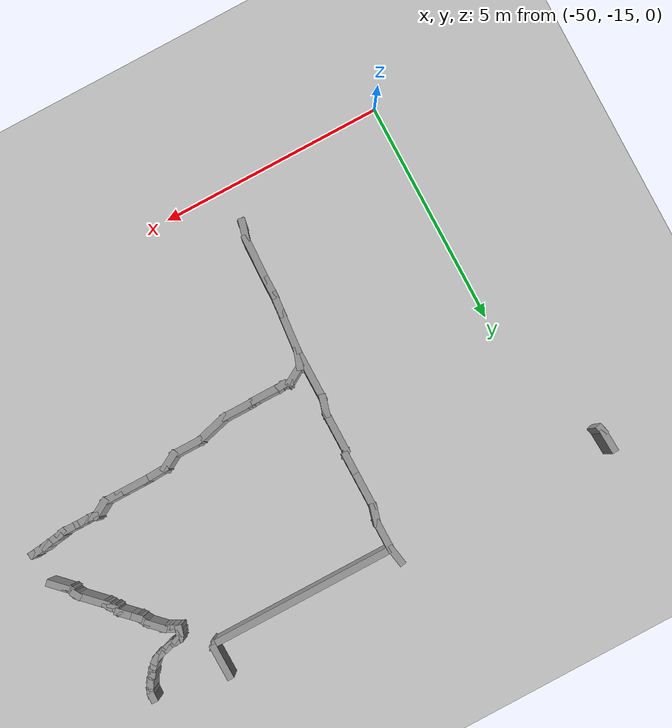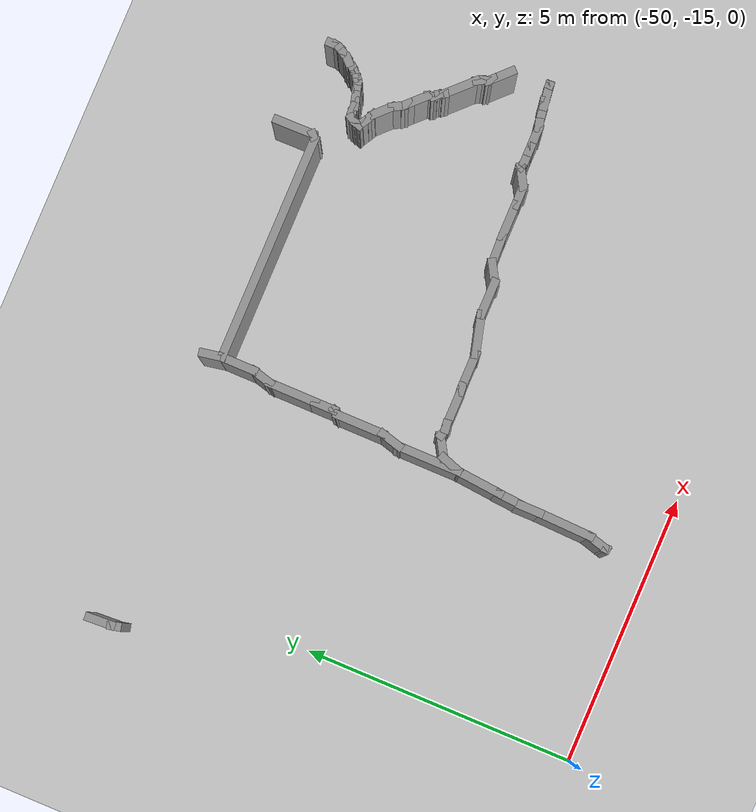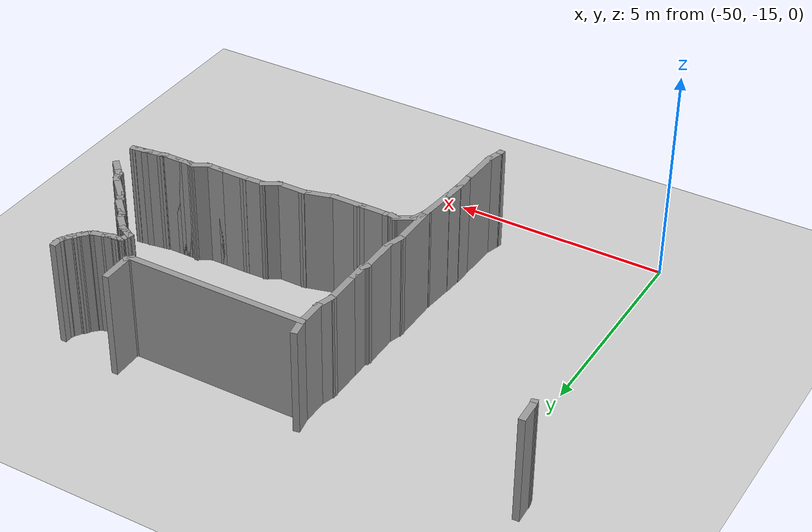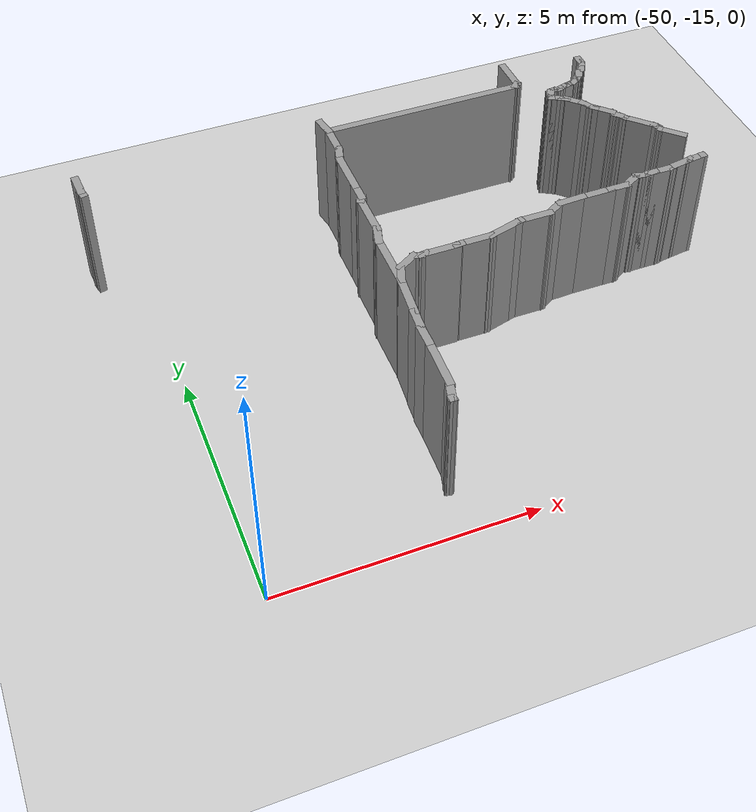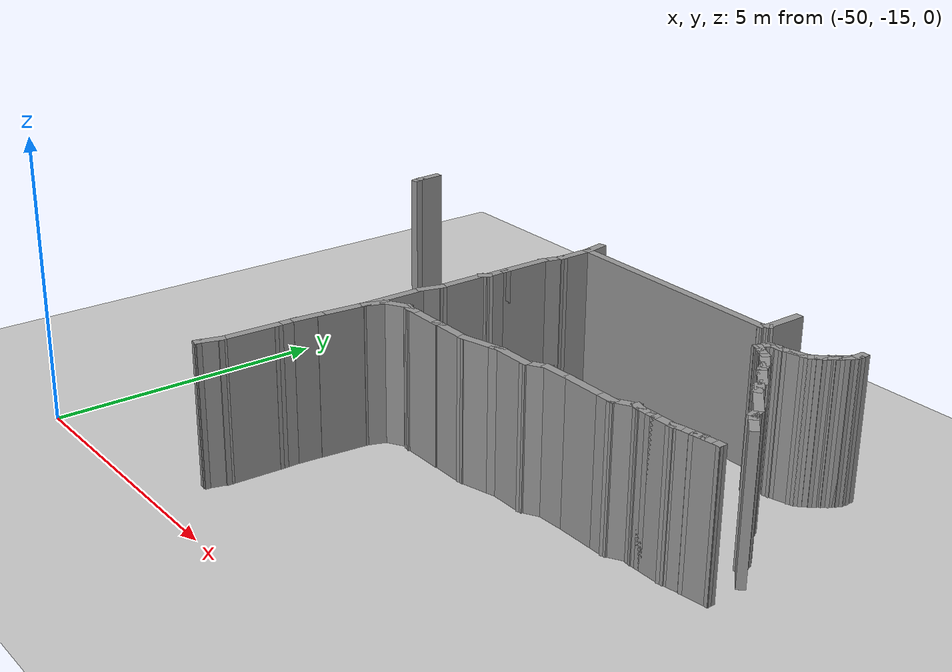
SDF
<sdf version="1.6">
 <world name="default">
  <model name="ground_plane">
   <static>1</static>
   <link name="link">
    <collision name="collision">
     <geometry><plane><normal>0 0 1</normal><size>100 100</size></plane></geometry>
     <surface><friction><ode><mu>100</mu><mu2>50</mu2></ode></friction></surface>
    </collision>
    <visual name="visual">
     <cast_shadows>0</cast_shadows>
     <geometry><plane><normal>0 0 1</normal><size>100 100</size></plane></geometry>
     <material>
      <script><uri>file://media/materials/scripts/gazebo.material</uri><name>Gazebo/Grey</name></script>
     </material>
    </visual>
   </link>
  </model>
  <model name="scene">
   <pose>1.8013 -1.70593 0 0 -0 0</pose>
   <link name="Wall_186">
    <collision name="Wall_186_Collision">
     <geometry><box><size>0.489872 0.15 2.5</size></box></geometry>
     <pose>0 0 1.25 0 -0 0</pose>
    </collision>
    <visual name="Wall_186_Visual">
     <pose>0 0 1.25 0 -0 0</pose>
     <geometry><box><size>0.489872 0.15 2.5</size></box></geometry>
     <material>
      <script><uri>file://media/materials/scripts/gazebo.material</uri><name>Gazebo/Grey</name></script>
      <ambient>1 1 1 1</ambient>
     </material>
    </visual>
    <pose>-43.1277 -8.61982 0 0 -0 3.14159</pose>
   </link>
   <link name="Wall_187">
    <collision name="Wall_187_Collision">
     <geometry><box><size>0.75 0.15 2.5</size></box></geometry>
     <pose>0 0 1.25 0 -0 0</pose>
    </collision>
    <visual name="Wall_187_Visual">
     <pose>0 0 1.25 0 -0 0</pose>
     <geometry><box><size>0.75 0.15 2.5</size></box></geometry>
     <material>
      <script><uri>file://media/materials/scripts/gazebo.material</uri><name>Gazebo/Grey</name></script>
      <ambient>1 1 1 1</ambient>
     </material>
    </visual>
    <pose>-43.5976 -8.61982 0 0 -0 3.14159</pose>
   </link>
   <link name="Wall_188">
    <collision name="Wall_188_Collision">
     <geometry><box><size>0.623185 0.15 2.5</size></box></geometry>
     <pose>0 0 1.25 0 -0 0</pose>
    </collision>
    <visual name="Wall_188_Visual">
     <pose>0 0 1.25 0 -0 0</pose>
     <geometry><box><size>0.623185 0.15 2.5</size></box></geometry>
     <material>
      <script><uri>file://media/materials/scripts/gazebo.material</uri><name>Gazebo/Grey</name></script>
      <ambient>1 1 1 1</ambient>
     </material>
    </visual>
    <pose>-44.134 -8.62987 0 0 0 -3.09912</pose>
   </link>
   <link name="Wall_189">
    <collision name="Wall_189_Collision">
     <geometry><box><size>0.5 0.15 2.5</size></box></geometry>
     <pose>0 0 1.25 0 -0 0</pose>
    </collision>
    <visual name="Wall_189_Visual">
     <pose>0 0 1.25 0 -0 0</pose>
     <geometry><box><size>0.5 0.15 2.5</size></box></geometry>
     <material>
      <script><uri>file://media/materials/scripts/gazebo.material</uri><name>Gazebo/Grey</name></script>
      <ambient>1 1 1 1</ambient>
     </material>
    </visual>
    <pose>-44.522 -8.72071 0 0 0 -2.61799</pose>
   </link>
   <link name="Wall_192">
    <collision name="Wall_192_Collision">
     <geometry><box><size>0.75 0.15 2.5</size></box></geometry>
     <pose>0 0 1.25 0 -0 0</pose>
    </collision>
    <visual name="Wall_192_Visual">
     <pose>0 0 1.25 0 -0 0</pose>
     <geometry><box><size>0.75 0.15 2.5</size></box></geometry>
     <material>
      <script><uri>file://media/materials/scripts/gazebo.material</uri><name>Gazebo/Grey</name></script>
      <ambient>1 1 1 1</ambient>
     </material>
    </visual>
    <pose>-44.9735 -8.80821 0 0 -0 3.14159</pose>
   </link>
   <link name="Wall_193">
    <collision name="Wall_193_Collision">
     <geometry><box><size>0.25 0.15 2.5</size></box></geometry>
     <pose>0 0 1.25 0 -0 0</pose>
    </collision>
    <visual name="Wall_193_Visual">
     <pose>0 0 1.25 0 -0 0</pose>
     <geometry><box><size>0.25 0.15 2.5</size></box></geometry>
     <material>
      <script><uri>file://media/materials/scripts/gazebo.material</uri><name>Gazebo/Grey</name></script>
      <ambient>1 1 1 1</ambient>
     </material>
    </visual>
    <pose>-45.3218 -8.82115 0 0 0 -2.87979</pose>
   </link>
   <link name="Wall_194">
    <collision name="Wall_194_Collision">
     <geometry><box><size>0.75 0.15 2.5</size></box></geometry>
     <pose>0 0 1.25 0 -0 0</pose>
    </collision>
    <visual name="Wall_194_Visual">
     <pose>0 0 1.25 0 -0 0</pose>
     <geometry><box><size>0.75 0.15 2.5</size></box></geometry>
     <material>
      <script><uri>file://media/materials/scripts/gazebo.material</uri><name>Gazebo/Grey</name></script>
      <ambient>1 1 1 1</ambient>
     </material>
    </visual>
    <pose>-45.6599 -8.91174 0 0 0 -2.87979</pose>
   </link>
   <link name="Wall_195">
    <collision name="Wall_195_Collision">
     <geometry><box><size>0.75 0.15 2.5</size></box></geometry>
     <pose>0 0 1.25 0 -0 0</pose>
    </collision>
    <visual name="Wall_195_Visual">
     <pose>0 0 1.25 0 -0 0</pose>
     <geometry><box><size>0.75 0.15 2.5</size></box></geometry>
     <material>
      <script><uri>file://media/materials/scripts/gazebo.material</uri><name>Gazebo/Grey</name></script>
      <ambient>1 1 1 1</ambient>
     </material>
    </visual>
    <pose>-46.2497 -8.98939 0 0 -0 3.14159</pose>
   </link>
   <link name="Wall_196">
    <collision name="Wall_196_Collision">
     <geometry><box><size>0.247396 0.15 2.5</size></box></geometry>
     <pose>0 0 1.25 0 -0 0</pose>
    </collision>
    <visual name="Wall_196_Visual">
     <pose>0 0 1.25 0 -0 0</pose>
     <geometry><box><size>0.247396 0.15 2.5</size></box></geometry>
     <material>
      <script><uri>file://media/materials/scripts/gazebo.material</uri><name>Gazebo/Grey</name></script>
      <ambient>1 1 1 1</ambient>
     </material>
    </visual>
    <pose>-46.598 -8.99228 0 0 0 -3.08171</pose>
   </link>
   <link name="Wall_197">
    <collision name="Wall_197_Collision">
     <geometry><box><size>0.75 0.15 2.5</size></box></geometry>
     <pose>0 0 1.25 0 -0 0</pose>
    </collision>
    <visual name="Wall_197_Visual">
     <pose>0 0 1.25 0 -0 0</pose>
     <geometry><box><size>0.75 0.15 2.5</size></box></geometry>
     <material>
      <script><uri>file://media/materials/scripts/gazebo.material</uri><name>Gazebo/Grey</name></script>
      <ambient>1 1 1 1</ambient>
     </material>
    </visual>
    <pose>-46.9463 -9.00188 0 0 -0 3.14159</pose>
   </link>
   <link name="Wall_198">
    <collision name="Wall_198_Collision">
     <geometry><box><size>0.253569 0.15 2.5</size></box></geometry>
     <pose>0 0 1.25 0 -0 0</pose>
    </collision>
    <visual name="Wall_198_Visual">
     <pose>0 0 1.25 0 -0 0</pose>
     <geometry><box><size>0.253569 0.15 2.5</size></box></geometry>
     <material>
      <script><uri>file://media/materials/scripts/gazebo.material</uri><name>Gazebo/Grey</name></script>
      <ambient>1 1 1 1</ambient>
     </material>
    </visual>
    <pose>-47.2979 -9.00142 0 0 0 -3.02127</pose>
   </link>
   <link name="Wall_199">
    <collision name="Wall_199_Collision">
     <geometry><box><size>0.278084 0.15 2.5</size></box></geometry>
     <pose>0 0 1.25 0 -0 0</pose>
    </collision>
    <visual name="Wall_199_Visual">
     <pose>0 0 1.25 0 -0 0</pose>
     <geometry><box><size>0.278084 0.15 2.5</size></box></geometry>
     <material>
      <script><uri>file://media/materials/scripts/gazebo.material</uri><name>Gazebo/Grey</name></script>
      <ambient>1 1 1 1</ambient>
     </material>
    </visual>
    <pose>-47.4112 -8.99717 0 0 -0 2.86976</pose>
   </link>
   <link name="Wall_200">
    <collision name="Wall_200_Collision">
     <geometry><box><size>0.542446 0.15 2.5</size></box></geometry>
     <pose>0 0 1.25 0 -0 0</pose>
    </collision>
    <visual name="Wall_200_Visual">
     <pose>0 0 1.25 0 -0 0</pose>
     <geometry><box><size>0.542446 0.15 2.5</size></box></geometry>
     <material>
      <script><uri>file://media/materials/scripts/gazebo.material</uri><name>Gazebo/Grey</name></script>
      <ambient>1 1 1 1</ambient>
     </material>
    </visual>
    <pose>-47.6412 -9.07417 0 0 0 -2.60154</pose>
   </link>
   <link name="Wall_201">
    <collision name="Wall_201_Collision">
     <geometry><box><size>0.486694 0.15 2.5</size></box></geometry>
     <pose>0 0 1.25 0 -0 0</pose>
    </collision>
    <visual name="Wall_201_Visual">
     <pose>0 0 1.25 0 -0 0</pose>
     <geometry><box><size>0.486694 0.15 2.5</size></box></geometry>
     <material>
      <script><uri>file://media/materials/scripts/gazebo.material</uri><name>Gazebo/Grey</name></script>
      <ambient>1 1 1 1</ambient>
     </material>
    </visual>
    <pose>-47.8649 -9.32736 0 0 0 -1.90574</pose>
   </link>
   <link name="Wall_203">
    <collision name="Wall_203_Collision">
     <geometry><box><size>0.963162 0.15 2.5</size></box></geometry>
     <pose>0 0 1.25 0 -0 0</pose>
    </collision>
    <visual name="Wall_203_Visual">
     <pose>0 0 1.25 0 -0 0</pose>
     <geometry><box><size>0.963162 0.15 2.5</size></box></geometry>
     <material>
      <script><uri>file://media/materials/scripts/gazebo.material</uri><name>Gazebo/Grey</name></script>
      <ambient>1 1 1 1</ambient>
     </material>
    </visual>
    <pose>-47.9637 -9.89126 0 0 0 -1.66151</pose>
   </link>
   <link name="Wall_205">
    <collision name="Wall_205_Collision">
     <geometry><box><size>0.570071 0.15 2.5</size></box></geometry>
     <pose>0 0 1.25 0 -0 0</pose>
    </collision>
    <visual name="Wall_205_Visual">
     <pose>0 0 1.25 0 -0 0</pose>
     <geometry><box><size>0.570071 0.15 2.5</size></box></geometry>
     <material>
      <script><uri>file://media/materials/scripts/gazebo.material</uri><name>Gazebo/Grey</name></script>
      <ambient>1 1 1 1</ambient>
     </material>
    </visual>
    <pose>-48.0224 -10.5054 0 0 0 -1.64312</pose>
   </link>
   <link name="Wall_206">
    <collision name="Wall_206_Collision">
     <geometry><box><size>0.5 0.15 2.5</size></box></geometry>
     <pose>0 0 1.25 0 -0 0</pose>
    </collision>
    <visual name="Wall_206_Visual">
     <pose>0 0 1.25 0 -0 0</pose>
     <geometry><box><size>0.5 0.15 2.5</size></box></geometry>
     <material>
      <script><uri>file://media/materials/scripts/gazebo.material</uri><name>Gazebo/Grey</name></script>
      <ambient>1 1 1 1</ambient>
     </material>
    </visual>
    <pose>-48.0443 -10.8896 0 0 0 -1.5708</pose>
   </link>
   <link name="Wall_207">
    <collision name="Wall_207_Collision">
     <geometry><box><size>1.1091 0.15 2.5</size></box></geometry>
     <pose>0 0 1.25 0 -0 0</pose>
    </collision>
    <visual name="Wall_207_Visual">
     <pose>0 0 1.25 0 -0 0</pose>
     <geometry><box><size>1.1091 0.15 2.5</size></box></geometry>
     <material>
      <script><uri>file://media/materials/scripts/gazebo.material</uri><name>Gazebo/Grey</name></script>
      <ambient>1 1 1 1</ambient>
     </material>
    </visual>
    <pose>-48.0594 -11.5439 0 0 0 -1.60241</pose>
   </link>
   <link name="Wall_209">
    <collision name="Wall_209_Collision">
     <geometry><box><size>0.5 0.15 2.5</size></box></geometry>
     <pose>0 0 1.25 0 -0 0</pose>
    </collision>
    <visual name="Wall_209_Visual">
     <pose>0 0 1.25 0 -0 0</pose>
     <geometry><box><size>0.5 0.15 2.5</size></box></geometry>
     <material>
      <script><uri>file://media/materials/scripts/gazebo.material</uri><name>Gazebo/Grey</name></script>
      <ambient>1 1 1 1</ambient>
     </material>
    </visual>
    <pose>-48.1266 -12.1923 0 0 0 -1.8326</pose>
   </link>
   <link name="Wall_210">
    <collision name="Wall_210_Collision">
     <geometry><box><size>0.15 0.15 2.5</size></box></geometry>
     <pose>0 0 1.25 0 -0 0</pose>
    </collision>
    <visual name="Wall_210_Visual">
     <pose>0 0 1.25 0 -0 0</pose>
     <geometry><box><size>0.15 0.15 2.5</size></box></geometry>
     <material>
      <script><uri>file://media/materials/scripts/gazebo.material</uri><name>Gazebo/Grey</name></script>
      <ambient>1 1 1 1</ambient>
     </material>
    </visual>
    <pose>-48.1652 -12.3613 0 0 -0 0</pose>
   </link>
   <link name="Wall_212">
    <collision name="Wall_212_Collision">
     <geometry><box><size>1.25 0.15 2.5</size></box></geometry>
     <pose>0 0 1.25 0 -0 0</pose>
    </collision>
    <visual name="Wall_212_Visual">
     <pose>0 0 1.25 0 -0 0</pose>
     <geometry><box><size>1.25 0.15 2.5</size></box></geometry>
     <material>
      <script><uri>file://media/materials/scripts/gazebo.material</uri><name>Gazebo/Grey</name></script>
      <ambient>1 1 1 1</ambient>
     </material>
    </visual>
    <pose>-47.9269 -8.93635 0 0 -0 1.5708</pose>
   </link>
   <link name="Wall_213">
    <collision name="Wall_213_Collision">
     <geometry><box><size>0.5 0.15 2.5</size></box></geometry>
     <pose>0 0 1.25 0 -0 0</pose>
    </collision>
    <visual name="Wall_213_Visual">
     <pose>0 0 1.25 0 -0 0</pose>
     <geometry><box><size>0.5 0.15 2.5</size></box></geometry>
     <material>
      <script><uri>file://media/materials/scripts/gazebo.material</uri><name>Gazebo/Grey</name></script>
      <ambient>1 1 1 1</ambient>
     </material>
    </visual>
    <pose>-47.8816 -8.21731 0 0 -0 1.309</pose>
   </link>
   <link name="Wall_214">
    <collision name="Wall_214_Collision">
     <geometry><box><size>1 0.15 2.5</size></box></geometry>
     <pose>0 0 1.25 0 -0 0</pose>
    </collision>
    <visual name="Wall_214_Visual">
     <pose>0 0 1.25 0 -0 0</pose>
     <geometry><box><size>1 0.15 2.5</size></box></geometry>
     <material>
      <script><uri>file://media/materials/scripts/gazebo.material</uri><name>Gazebo/Grey</name></script>
      <ambient>1 1 1 1</ambient>
     </material>
    </visual>
    <pose>-47.8363 -7.62328 0 0 -0 1.5708</pose>
   </link>
   <link name="Wall_215">
    <collision name="Wall_215_Collision">
     <geometry><box><size>0.25 0.15 2.5</size></box></geometry>
     <pose>0 0 1.25 0 -0 0</pose>
    </collision>
    <visual name="Wall_215_Visual">
     <pose>0 0 1.25 0 -0 0</pose>
     <geometry><box><size>0.25 0.15 2.5</size></box></geometry>
     <material>
      <script><uri>file://media/materials/scripts/gazebo.material</uri><name>Gazebo/Grey</name></script>
      <ambient>1 1 1 1</ambient>
     </material>
    </visual>
    <pose>-47.8113 -7.15497 0 0 -0 1.0472</pose>
   </link>
   <link name="Wall_216">
    <collision name="Wall_216_Collision">
     <geometry><box><size>0.5 0.15 2.5</size></box></geometry>
     <pose>0 0 1.25 0 -0 0</pose>
    </collision>
    <visual name="Wall_216_Visual">
     <pose>0 0 1.25 0 -0 0</pose>
     <geometry><box><size>0.5 0.15 2.5</size></box></geometry>
     <material>
      <script><uri>file://media/materials/scripts/gazebo.material</uri><name>Gazebo/Grey</name></script>
      <ambient>1 1 1 1</ambient>
     </material>
    </visual>
    <pose>-47.7863 -6.93667 0 0 -0 1.5708</pose>
   </link>
   <link name="Wall_218">
    <collision name="Wall_218_Collision">
     <geometry><box><size>1 0.15 2.5</size></box></geometry>
     <pose>0 0 1.25 0 -0 0</pose>
    </collision>
    <visual name="Wall_218_Visual">
     <pose>0 0 1.25 0 -0 0</pose>
     <geometry><box><size>1 0.15 2.5</size></box></geometry>
     <material>
      <script><uri>file://media/materials/scripts/gazebo.material</uri><name>Gazebo/Grey</name></script>
      <ambient>1 1 1 1</ambient>
     </material>
    </visual>
    <pose>-47.7863 -6.33667 0 0 -0 1.5708</pose>
   </link>
   <link name="Wall_219">
    <collision name="Wall_219_Collision">
     <geometry><box><size>0.5 0.15 2.5</size></box></geometry>
     <pose>0 0 1.25 0 -0 0</pose>
    </collision>
    <visual name="Wall_219_Visual">
     <pose>0 0 1.25 0 -0 0</pose>
     <geometry><box><size>0.5 0.15 2.5</size></box></geometry>
     <material>
      <script><uri>file://media/materials/scripts/gazebo.material</uri><name>Gazebo/Grey</name></script>
      <ambient>1 1 1 1</ambient>
     </material>
    </visual>
    <pose>-47.741 -5.74264 0 0 -0 1.309</pose>
   </link>
   <link name="Wall_220">
    <collision name="Wall_220_Collision">
     <geometry><box><size>0.75 0.15 2.5</size></box></geometry>
     <pose>0 0 1.25 0 -0 0</pose>
    </collision>
    <visual name="Wall_220_Visual">
     <pose>0 0 1.25 0 -0 0</pose>
     <geometry><box><size>0.75 0.15 2.5</size></box></geometry>
     <material>
      <script><uri>file://media/materials/scripts/gazebo.material</uri><name>Gazebo/Grey</name></script>
      <ambient>1 1 1 1</ambient>
     </material>
    </visual>
    <pose>-47.6957 -5.2736 0 0 -0 1.5708</pose>
   </link>
   <link name="Wall_222">
    <collision name="Wall_222_Collision">
     <geometry><box><size>0.485738 0.15 2.5</size></box></geometry>
     <pose>0 0 1.25 0 -0 0</pose>
    </collision>
    <visual name="Wall_222_Visual">
     <pose>0 0 1.25 0 -0 0</pose>
     <geometry><box><size>0.485738 0.15 2.5</size></box></geometry>
     <material>
      <script><uri>file://media/materials/scripts/gazebo.material</uri><name>Gazebo/Grey</name></script>
      <ambient>1 1 1 1</ambient>
     </material>
    </visual>
    <pose>-47.7256 -4.80841 0 0 -0 1.74981</pose>
   </link>
   <link name="Wall_232">
    <collision name="Wall_232_Collision">
     <geometry><box><size>4.25 0.15 2.5</size></box></geometry>
     <pose>0 0 1.25 0 -0 0</pose>
    </collision>
    <visual name="Wall_232_Visual">
     <pose>0 0 1.25 0 -0 0</pose>
     <geometry><box><size>4.25 0.15 2.5</size></box></geometry>
     <material>
      <script><uri>file://media/materials/scripts/gazebo.material</uri><name>Gazebo/Grey</name></script>
      <ambient>1 1 1 1</ambient>
     </material>
    </visual>
    <pose>-45.6457 -4.9736 0 0 -0 0</pose>
   </link>
   <link name="Wall_233">
    <collision name="Wall_233_Collision">
     <geometry><box><size>0.25 0.15 2.5</size></box></geometry>
     <pose>0 0 1.25 0 -0 0</pose>
    </collision>
    <visual name="Wall_233_Visual">
     <pose>0 0 1.25 0 -0 0</pose>
     <geometry><box><size>0.25 0.15 2.5</size></box></geometry>
     <material>
      <script><uri>file://media/materials/scripts/gazebo.material</uri><name>Gazebo/Grey</name></script>
      <ambient>1 1 1 1</ambient>
     </material>
    </visual>
    <pose>-43.5604 -4.93824 0 0 -0 0.785398</pose>
   </link>
   <link name="Wall_244">
    <collision name="Wall_244_Collision">
     <geometry><box><size>0.80796 0.15 2.5</size></box></geometry>
     <pose>0 0 1.25 0 -0 0</pose>
    </collision>
    <visual name="Wall_244_Visual">
     <pose>0 0 1.25 0 -0 0</pose>
     <geometry><box><size>0.80796 0.15 2.5</size></box></geometry>
     <material>
      <script><uri>file://media/materials/scripts/gazebo.material</uri><name>Gazebo/Grey</name></script>
      <ambient>1 1 1 1</ambient>
     </material>
    </visual>
    <pose>-43.5296 -4.57394 0 0 0 -1.55671</pose>
   </link>
   <link name="Wall_269">
    <collision name="Wall_269_Collision">
     <geometry><box><size>0.25 0.15 2.5</size></box></geometry>
     <pose>0 0 1.25 0 -0 0</pose>
    </collision>
    <visual name="Wall_269_Visual">
     <pose>0 0 1.25 0 -0 0</pose>
     <geometry><box><size>0.25 0.15 2.5</size></box></geometry>
     <material>
      <script><uri>file://media/materials/scripts/gazebo.material</uri><name>Gazebo/Grey</name></script>
      <ambient>1 1 1 1</ambient>
     </material>
    </visual>
    <pose>-41.9402 -4.61241 0 0 0 -1.5708</pose>
   </link>
   <link name="Wall_270">
    <collision name="Wall_270_Collision">
     <geometry><box><size>0.25 0.15 2.5</size></box></geometry>
     <pose>0 0 1.25 0 -0 0</pose>
    </collision>
    <visual name="Wall_270_Visual">
     <pose>0 0 1.25 0 -0 0</pose>
     <geometry><box><size>0.25 0.15 2.5</size></box></geometry>
     <material>
      <script><uri>file://media/materials/scripts/gazebo.material</uri><name>Gazebo/Grey</name></script>
      <ambient>1 1 1 1</ambient>
     </material>
    </visual>
    <pose>-41.9532 -4.71071 0 0 0 -1.8326</pose>
   </link>
   <link name="Wall_271">
    <collision name="Wall_271_Collision">
     <geometry><box><size>0.25 0.15 2.5</size></box></geometry>
     <pose>0 0 1.25 0 -0 0</pose>
    </collision>
    <visual name="Wall_271_Visual">
     <pose>0 0 1.25 0 -0 0</pose>
     <geometry><box><size>0.25 0.15 2.5</size></box></geometry>
     <material>
      <script><uri>file://media/materials/scripts/gazebo.material</uri><name>Gazebo/Grey</name></script>
      <ambient>1 1 1 1</ambient>
     </material>
    </visual>
    <pose>-41.9911 -4.80231 0 0 0 -2.0944</pose>
   </link>
   <link name="Wall_273">
    <collision name="Wall_273_Collision">
     <geometry><box><size>0.25 0.15 2.5</size></box></geometry>
     <pose>0 0 1.25 0 -0 0</pose>
    </collision>
    <visual name="Wall_273_Visual">
     <pose>0 0 1.25 0 -0 0</pose>
     <geometry><box><size>0.25 0.15 2.5</size></box></geometry>
     <material>
      <script><uri>file://media/materials/scripts/gazebo.material</uri><name>Gazebo/Grey</name></script>
      <ambient>1 1 1 1</ambient>
     </material>
    </visual>
    <pose>-41.9911 -4.80231 0 0 0 -2.0944</pose>
   </link>
   <link name="Wall_274">
    <collision name="Wall_274_Collision">
     <geometry><box><size>0.25 0.15 2.5</size></box></geometry>
     <pose>0 0 1.25 0 -0 0</pose>
    </collision>
    <visual name="Wall_274_Visual">
     <pose>0 0 1.25 0 -0 0</pose>
     <geometry><box><size>0.25 0.15 2.5</size></box></geometry>
     <material>
      <script><uri>file://media/materials/scripts/gazebo.material</uri><name>Gazebo/Grey</name></script>
      <ambient>1 1 1 1</ambient>
     </material>
    </visual>
    <pose>-42.0411 -4.88891 0 0 0 -2.0944</pose>
   </link>
   <link name="Wall_275">
    <collision name="Wall_275_Collision">
     <geometry><box><size>0.25 0.15 2.5</size></box></geometry>
     <pose>0 0 1.25 0 -0 0</pose>
    </collision>
    <visual name="Wall_275_Visual">
     <pose>0 0 1.25 0 -0 0</pose>
     <geometry><box><size>0.25 0.15 2.5</size></box></geometry>
     <material>
      <script><uri>file://media/materials/scripts/gazebo.material</uri><name>Gazebo/Grey</name></script>
      <ambient>1 1 1 1</ambient>
     </material>
    </visual>
    <pose>-42.1015 -4.96757 0 0 0 -2.35619</pose>
   </link>
   <link name="Wall_276">
    <collision name="Wall_276_Collision">
     <geometry><box><size>0.25 0.15 2.5</size></box></geometry>
     <pose>0 0 1.25 0 -0 0</pose>
    </collision>
    <visual name="Wall_276_Visual">
     <pose>0 0 1.25 0 -0 0</pose>
     <geometry><box><size>0.25 0.15 2.5</size></box></geometry>
     <material>
      <script><uri>file://media/materials/scripts/gazebo.material</uri><name>Gazebo/Grey</name></script>
      <ambient>1 1 1 1</ambient>
     </material>
    </visual>
    <pose>-42.1618 -5.04622 0 0 0 -2.0944</pose>
   </link>
   <link name="Wall_277">
    <collision name="Wall_277_Collision">
     <geometry><box><size>0.25 0.15 2.5</size></box></geometry>
     <pose>0 0 1.25 0 -0 0</pose>
    </collision>
    <visual name="Wall_277_Visual">
     <pose>0 0 1.25 0 -0 0</pose>
     <geometry><box><size>0.25 0.15 2.5</size></box></geometry>
     <material>
      <script><uri>file://media/materials/scripts/gazebo.material</uri><name>Gazebo/Grey</name></script>
      <ambient>1 1 1 1</ambient>
     </material>
    </visual>
    <pose>-42.2222 -5.12488 0 0 0 -2.35619</pose>
   </link>
   <link name="Wall_278">
    <collision name="Wall_278_Collision">
     <geometry><box><size>0.25 0.15 2.5</size></box></geometry>
     <pose>0 0 1.25 0 -0 0</pose>
    </collision>
    <visual name="Wall_278_Visual">
     <pose>0 0 1.25 0 -0 0</pose>
     <geometry><box><size>0.25 0.15 2.5</size></box></geometry>
     <material>
      <script><uri>file://media/materials/scripts/gazebo.material</uri><name>Gazebo/Grey</name></script>
      <ambient>1 1 1 1</ambient>
     </material>
    </visual>
    <pose>-42.2929 -5.19559 0 0 0 -2.35619</pose>
   </link>
   <link name="Wall_279">
    <collision name="Wall_279_Collision">
     <geometry><box><size>0.25 0.15 2.5</size></box></geometry>
     <pose>0 0 1.25 0 -0 0</pose>
    </collision>
    <visual name="Wall_279_Visual">
     <pose>0 0 1.25 0 -0 0</pose>
     <geometry><box><size>0.25 0.15 2.5</size></box></geometry>
     <material>
      <script><uri>file://media/materials/scripts/gazebo.material</uri><name>Gazebo/Grey</name></script>
      <ambient>1 1 1 1</ambient>
     </material>
    </visual>
    <pose>-42.3716 -5.25594 0 0 0 -2.61799</pose>
   </link>
   <link name="Wall_280">
    <collision name="Wall_280_Collision">
     <geometry><box><size>0.25 0.15 2.5</size></box></geometry>
     <pose>0 0 1.25 0 -0 0</pose>
    </collision>
    <visual name="Wall_280_Visual">
     <pose>0 0 1.25 0 -0 0</pose>
     <geometry><box><size>0.25 0.15 2.5</size></box></geometry>
     <material>
      <script><uri>file://media/materials/scripts/gazebo.material</uri><name>Gazebo/Grey</name></script>
      <ambient>1 1 1 1</ambient>
     </material>
    </visual>
    <pose>-42.4632 -5.29389 0 0 0 -2.87979</pose>
   </link>
   <link name="Wall_281">
    <collision name="Wall_281_Collision">
     <geometry><box><size>0.25 0.15 2.5</size></box></geometry>
     <pose>0 0 1.25 0 -0 0</pose>
    </collision>
    <visual name="Wall_281_Visual">
     <pose>0 0 1.25 0 -0 0</pose>
     <geometry><box><size>0.25 0.15 2.5</size></box></geometry>
     <material>
      <script><uri>file://media/materials/scripts/gazebo.material</uri><name>Gazebo/Grey</name></script>
      <ambient>1 1 1 1</ambient>
     </material>
    </visual>
    <pose>-42.5597 -5.31977 0 0 0 -2.87979</pose>
   </link>
   <link name="Wall_282">
    <collision name="Wall_282_Collision">
     <geometry><box><size>0.25 0.15 2.5</size></box></geometry>
     <pose>0 0 1.25 0 -0 0</pose>
    </collision>
    <visual name="Wall_282_Visual">
     <pose>0 0 1.25 0 -0 0</pose>
     <geometry><box><size>0.25 0.15 2.5</size></box></geometry>
     <material>
      <script><uri>file://media/materials/scripts/gazebo.material</uri><name>Gazebo/Grey</name></script>
      <ambient>1 1 1 1</ambient>
     </material>
    </visual>
    <pose>-42.6563 -5.34565 0 0 0 -2.87979</pose>
   </link>
   <link name="Wall_283">
    <collision name="Wall_283_Collision">
     <geometry><box><size>0.25 0.15 2.5</size></box></geometry>
     <pose>0 0 1.25 0 -0 0</pose>
    </collision>
    <visual name="Wall_283_Visual">
     <pose>0 0 1.25 0 -0 0</pose>
     <geometry><box><size>0.25 0.15 2.5</size></box></geometry>
     <material>
      <script><uri>file://media/materials/scripts/gazebo.material</uri><name>Gazebo/Grey</name></script>
      <ambient>1 1 1 1</ambient>
     </material>
    </visual>
    <pose>-42.7529 -5.37153 0 0 0 -2.87979</pose>
   </link>
   <link name="Wall_284">
    <collision name="Wall_284_Collision">
     <geometry><box><size>0.25 0.15 2.5</size></box></geometry>
     <pose>0 0 1.25 0 -0 0</pose>
    </collision>
    <visual name="Wall_284_Visual">
     <pose>0 0 1.25 0 -0 0</pose>
     <geometry><box><size>0.25 0.15 2.5</size></box></geometry>
     <material>
      <script><uri>file://media/materials/scripts/gazebo.material</uri><name>Gazebo/Grey</name></script>
      <ambient>1 1 1 1</ambient>
     </material>
    </visual>
    <pose>-42.8512 -5.38447 0 0 -0 3.14159</pose>
   </link>
   <link name="Wall_285">
    <collision name="Wall_285_Collision">
     <geometry><box><size>0.25 0.15 2.5</size></box></geometry>
     <pose>0 0 1.25 0 -0 0</pose>
    </collision>
    <visual name="Wall_285_Visual">
     <pose>0 0 1.25 0 -0 0</pose>
     <geometry><box><size>0.25 0.15 2.5</size></box></geometry>
     <material>
      <script><uri>file://media/materials/scripts/gazebo.material</uri><name>Gazebo/Grey</name></script>
      <ambient>1 1 1 1</ambient>
     </material>
    </visual>
    <pose>-42.9495 -5.39741 0 0 0 -2.87979</pose>
   </link>
   <link name="Wall_286">
    <collision name="Wall_286_Collision">
     <geometry><box><size>0.25 0.15 2.5</size></box></geometry>
     <pose>0 0 1.25 0 -0 0</pose>
    </collision>
    <visual name="Wall_286_Visual">
     <pose>0 0 1.25 0 -0 0</pose>
     <geometry><box><size>0.25 0.15 2.5</size></box></geometry>
     <material>
      <script><uri>file://media/materials/scripts/gazebo.material</uri><name>Gazebo/Grey</name></script>
      <ambient>1 1 1 1</ambient>
     </material>
    </visual>
    <pose>-43.0228 -5.45366 0 0 0 -2.0944</pose>
   </link>
   <link name="Wall_287">
    <collision name="Wall_287_Collision">
     <geometry><box><size>0.25 0.15 2.5</size></box></geometry>
     <pose>0 0 1.25 0 -0 0</pose>
    </collision>
    <visual name="Wall_287_Visual">
     <pose>0 0 1.25 0 -0 0</pose>
     <geometry><box><size>0.25 0.15 2.5</size></box></geometry>
     <material>
      <script><uri>file://media/materials/scripts/gazebo.material</uri><name>Gazebo/Grey</name></script>
      <ambient>1 1 1 1</ambient>
     </material>
    </visual>
    <pose>-43.0608 -5.54525 0 0 0 -1.8326</pose>
   </link>
   <link name="Wall_288">
    <collision name="Wall_288_Collision">
     <geometry><box><size>0.25 0.15 2.5</size></box></geometry>
     <pose>0 0 1.25 0 -0 0</pose>
    </collision>
    <visual name="Wall_288_Visual">
     <pose>0 0 1.25 0 -0 0</pose>
     <geometry><box><size>0.25 0.15 2.5</size></box></geometry>
     <material>
      <script><uri>file://media/materials/scripts/gazebo.material</uri><name>Gazebo/Grey</name></script>
      <ambient>1 1 1 1</ambient>
     </material>
    </visual>
    <pose>-43.0304 -5.61855 0 0 0 -0.523599</pose>
   </link>
   <link name="Wall_289">
    <collision name="Wall_289_Collision">
     <geometry><box><size>0.25 0.15 2.5</size></box></geometry>
     <pose>0 0 1.25 0 -0 0</pose>
    </collision>
    <visual name="Wall_289_Visual">
     <pose>0 0 1.25 0 -0 0</pose>
     <geometry><box><size>0.25 0.15 2.5</size></box></geometry>
     <material>
      <script><uri>file://media/materials/scripts/gazebo.material</uri><name>Gazebo/Grey</name></script>
      <ambient>1 1 1 1</ambient>
     </material>
    </visual>
    <pose>-42.9438 -5.66855 0 0 0 -0.523599</pose>
   </link>
   <link name="Wall_290">
    <collision name="Wall_290_Collision">
     <geometry><box><size>0.26568 0.15 2.5</size></box></geometry>
     <pose>0 0 1.25 0 -0 0</pose>
    </collision>
    <visual name="Wall_290_Visual">
     <pose>0 0 1.25 0 -0 0</pose>
     <geometry><box><size>0.26568 0.15 2.5</size></box></geometry>
     <material>
      <script><uri>file://media/materials/scripts/gazebo.material</uri><name>Gazebo/Grey</name></script>
      <ambient>1 1 1 1</ambient>
     </material>
    </visual>
    <pose>-42.8483 -5.71855 0 0 0 -0.446961</pose>
   </link>
   <link name="Wall_291">
    <collision name="Wall_291_Collision">
     <geometry><box><size>0.5 0.15 2.5</size></box></geometry>
     <pose>0 0 1.25 0 -0 0</pose>
    </collision>
    <visual name="Wall_291_Visual">
     <pose>0 0 1.25 0 -0 0</pose>
     <geometry><box><size>0.5 0.15 2.5</size></box></geometry>
     <material>
      <script><uri>file://media/materials/scripts/gazebo.material</uri><name>Gazebo/Grey</name></script>
      <ambient>1 1 1 1</ambient>
     </material>
    </visual>
    <pose>-42.6813 -5.86729 0 0 0 -0.785398</pose>
   </link>
   <link name="Wall_293">
    <collision name="Wall_293_Collision">
     <geometry><box><size>0.25 0.15 2.5</size></box></geometry>
     <pose>0 0 1.25 0 -0 0</pose>
    </collision>
    <visual name="Wall_293_Visual">
     <pose>0 0 1.25 0 -0 0</pose>
     <geometry><box><size>0.25 0.15 2.5</size></box></geometry>
     <material>
      <script><uri>file://media/materials/scripts/gazebo.material</uri><name>Gazebo/Grey</name></script>
      <ambient>1 1 1 1</ambient>
     </material>
    </visual>
    <pose>-42.5326 -6.03434 0 0 0 -1.0472</pose>
   </link>
   <link name="Wall_294">
    <collision name="Wall_294_Collision">
     <geometry><box><size>0.25 0.15 2.5</size></box></geometry>
     <pose>0 0 1.25 0 -0 0</pose>
    </collision>
    <visual name="Wall_294_Visual">
     <pose>0 0 1.25 0 -0 0</pose>
     <geometry><box><size>0.25 0.15 2.5</size></box></geometry>
     <material>
      <script><uri>file://media/materials/scripts/gazebo.material</uri><name>Gazebo/Grey</name></script>
      <ambient>1 1 1 1</ambient>
     </material>
    </visual>
    <pose>-42.4826 -6.12094 0 0 0 -1.0472</pose>
   </link>
   <link name="Wall_295">
    <collision name="Wall_295_Collision">
     <geometry><box><size>0.25 0.15 2.5</size></box></geometry>
     <pose>0 0 1.25 0 -0 0</pose>
    </collision>
    <visual name="Wall_295_Visual">
     <pose>0 0 1.25 0 -0 0</pose>
     <geometry><box><size>0.25 0.15 2.5</size></box></geometry>
     <material>
      <script><uri>file://media/materials/scripts/gazebo.material</uri><name>Gazebo/Grey</name></script>
      <ambient>1 1 1 1</ambient>
     </material>
    </visual>
    <pose>-42.4222 -6.1996 0 0 0 -0.785398</pose>
   </link>
   <link name="Wall_296">
    <collision name="Wall_296_Collision">
     <geometry><box><size>0.5 0.15 2.5</size></box></geometry>
     <pose>0 0 1.25 0 -0 0</pose>
    </collision>
    <visual name="Wall_296_Visual">
     <pose>0 0 1.25 0 -0 0</pose>
     <geometry><box><size>0.5 0.15 2.5</size></box></geometry>
     <material>
      <script><uri>file://media/materials/scripts/gazebo.material</uri><name>Gazebo/Grey</name></script>
      <ambient>1 1 1 1</ambient>
     </material>
    </visual>
    <pose>-42.2631 -6.3587 0 0 0 -0.785398</pose>
   </link>
   <link name="Wall_297">
    <collision name="Wall_297_Collision">
     <geometry><box><size>0.25 0.15 2.5</size></box></geometry>
     <pose>0 0 1.25 0 -0 0</pose>
    </collision>
    <visual name="Wall_297_Visual">
     <pose>0 0 1.25 0 -0 0</pose>
     <geometry><box><size>0.25 0.15 2.5</size></box></geometry>
     <material>
      <script><uri>file://media/materials/scripts/gazebo.material</uri><name>Gazebo/Grey</name></script>
      <ambient>1 1 1 1</ambient>
     </material>
    </visual>
    <pose>-42.1264 -6.53074 0 0 0 -1.309</pose>
   </link>
   <link name="Wall_298">
    <collision name="Wall_298_Collision">
     <geometry><box><size>0.25 0.15 2.5</size></box></geometry>
     <pose>0 0 1.25 0 -0 0</pose>
    </collision>
    <visual name="Wall_298_Visual">
     <pose>0 0 1.25 0 -0 0</pose>
     <geometry><box><size>0.25 0.15 2.5</size></box></geometry>
     <material>
      <script><uri>file://media/materials/scripts/gazebo.material</uri><name>Gazebo/Grey</name></script>
      <ambient>1 1 1 1</ambient>
     </material>
    </visual>
    <pose>-42.0781 -6.61439 0 0 0 -0.785398</pose>
   </link>
   <link name="Wall_299">
    <collision name="Wall_299_Collision">
     <geometry><box><size>0.25 0.15 2.5</size></box></geometry>
     <pose>0 0 1.25 0 -0 0</pose>
    </collision>
    <visual name="Wall_299_Visual">
     <pose>0 0 1.25 0 -0 0</pose>
     <geometry><box><size>0.25 0.15 2.5</size></box></geometry>
     <material>
      <script><uri>file://media/materials/scripts/gazebo.material</uri><name>Gazebo/Grey</name></script>
      <ambient>1 1 1 1</ambient>
     </material>
    </visual>
    <pose>-42.0178 -6.69304 0 0 0 -1.0472</pose>
   </link>
   <link name="Wall_300">
    <collision name="Wall_300_Collision">
     <geometry><box><size>0.75 0.15 2.5</size></box></geometry>
     <pose>0 0 1.25 0 -0 0</pose>
    </collision>
    <visual name="Wall_300_Visual">
     <pose>0 0 1.25 0 -0 0</pose>
     <geometry><box><size>0.75 0.15 2.5</size></box></geometry>
     <material>
      <script><uri>file://media/materials/scripts/gazebo.material</uri><name>Gazebo/Grey</name></script>
      <ambient>1 1 1 1</ambient>
     </material>
    </visual>
    <pose>-41.7806 -6.94848 0 0 0 -0.785398</pose>
   </link>
   <link name="Wall_301">
    <collision name="Wall_301_Collision">
     <geometry><box><size>0.25 0.15 2.5</size></box></geometry>
     <pose>0 0 1.25 0 -0 0</pose>
    </collision>
    <visual name="Wall_301_Visual">
     <pose>0 0 1.25 0 -0 0</pose>
     <geometry><box><size>0.25 0.15 2.5</size></box></geometry>
     <material>
      <script><uri>file://media/materials/scripts/gazebo.material</uri><name>Gazebo/Grey</name></script>
      <ambient>1 1 1 1</ambient>
     </material>
    </visual>
    <pose>-41.5435 -7.20391 0 0 0 -1.0472</pose>
   </link>
   <link name="Wall_302">
    <collision name="Wall_302_Collision">
     <geometry><box><size>0.25 0.15 2.5</size></box></geometry>
     <pose>0 0 1.25 0 -0 0</pose>
    </collision>
    <visual name="Wall_302_Visual">
     <pose>0 0 1.25 0 -0 0</pose>
     <geometry><box><size>0.25 0.15 2.5</size></box></geometry>
     <material>
      <script><uri>file://media/materials/scripts/gazebo.material</uri><name>Gazebo/Grey</name></script>
      <ambient>1 1 1 1</ambient>
     </material>
    </visual>
    <pose>-41.5056 -7.29551 0 0 0 -1.309</pose>
   </link>
   <link name="Wall_303">
    <collision name="Wall_303_Collision">
     <geometry><box><size>0.25 0.15 2.5</size></box></geometry>
     <pose>0 0 1.25 0 -0 0</pose>
    </collision>
    <visual name="Wall_303_Visual">
     <pose>0 0 1.25 0 -0 0</pose>
     <geometry><box><size>0.25 0.15 2.5</size></box></geometry>
     <material>
      <script><uri>file://media/materials/scripts/gazebo.material</uri><name>Gazebo/Grey</name></script>
      <ambient>1 1 1 1</ambient>
     </material>
    </visual>
    <pose>-41.4573 -7.37916 0 0 0 -0.785398</pose>
   </link>
   <link name="Wall_304">
    <collision name="Wall_304_Collision">
     <geometry><box><size>0.5 0.15 2.5</size></box></geometry>
     <pose>0 0 1.25 0 -0 0</pose>
    </collision>
    <visual name="Wall_304_Visual">
     <pose>0 0 1.25 0 -0 0</pose>
     <geometry><box><size>0.5 0.15 2.5</size></box></geometry>
     <material>
      <script><uri>file://media/materials/scripts/gazebo.material</uri><name>Gazebo/Grey</name></script>
      <ambient>1 1 1 1</ambient>
     </material>
    </visual>
    <pose>-41.2982 -7.53826 0 0 0 -0.785398</pose>
   </link>
   <link name="Wall_312">
    <collision name="Wall_312_Collision">
     <geometry><box><size>0.5 0.15 2.5</size></box></geometry>
     <pose>0 0 1.25 0 -0 0</pose>
    </collision>
    <visual name="Wall_312_Visual">
     <pose>0 0 1.25 0 -0 0</pose>
     <geometry><box><size>0.5 0.15 2.5</size></box></geometry>
     <material>
      <script><uri>file://media/materials/scripts/gazebo.material</uri><name>Gazebo/Grey</name></script>
      <ambient>1 1 1 1</ambient>
     </material>
    </visual>
    <pose>-42.8062 -8.53232 0 0 -0 0.523599</pose>
   </link>
   <link name="Wall_313">
    <collision name="Wall_313_Collision">
     <geometry><box><size>0.25 0.15 2.5</size></box></geometry>
     <pose>0 0 1.25 0 -0 0</pose>
    </collision>
    <visual name="Wall_313_Visual">
     <pose>0 0 1.25 0 -0 0</pose>
     <geometry><box><size>0.25 0.15 2.5</size></box></geometry>
     <material>
      <script><uri>file://media/materials/scripts/gazebo.material</uri><name>Gazebo/Grey</name></script>
      <ambient>1 1 1 1</ambient>
     </material>
    </visual>
    <pose>-42.6064 -8.45776 0 0 0 -0.261799</pose>
   </link>
   <link name="Wall_314">
    <collision name="Wall_314_Collision">
     <geometry><box><size>0.25 0.15 2.5</size></box></geometry>
     <pose>0 0 1.25 0 -0 0</pose>
    </collision>
    <visual name="Wall_314_Visual">
     <pose>0 0 1.25 0 -0 0</pose>
     <geometry><box><size>0.25 0.15 2.5</size></box></geometry>
     <material>
      <script><uri>file://media/materials/scripts/gazebo.material</uri><name>Gazebo/Grey</name></script>
      <ambient>1 1 1 1</ambient>
     </material>
    </visual>
    <pose>-42.5081 -8.4707 0 0 -0 0</pose>
   </link>
   <link name="Wall_315">
    <collision name="Wall_315_Collision">
     <geometry><box><size>0.25 0.15 2.5</size></box></geometry>
     <pose>0 0 1.25 0 -0 0</pose>
    </collision>
    <visual name="Wall_315_Visual">
     <pose>0 0 1.25 0 -0 0</pose>
     <geometry><box><size>0.25 0.15 2.5</size></box></geometry>
     <material>
      <script><uri>file://media/materials/scripts/gazebo.material</uri><name>Gazebo/Grey</name></script>
      <ambient>1 1 1 1</ambient>
     </material>
    </visual>
    <pose>-42.4081 -8.4707 0 0 -0 0</pose>
   </link>
   <link name="Wall_316">
    <collision name="Wall_316_Collision">
     <geometry><box><size>0.25 0.15 2.5</size></box></geometry>
     <pose>0 0 1.25 0 -0 0</pose>
    </collision>
    <visual name="Wall_316_Visual">
     <pose>0 0 1.25 0 -0 0</pose>
     <geometry><box><size>0.25 0.15 2.5</size></box></geometry>
     <material>
      <script><uri>file://media/materials/scripts/gazebo.material</uri><name>Gazebo/Grey</name></script>
      <ambient>1 1 1 1</ambient>
     </material>
    </visual>
    <pose>-42.3081 -8.4707 0 0 -0 0</pose>
   </link>
   <link name="Wall_317">
    <collision name="Wall_317_Collision">
     <geometry><box><size>0.5 0.15 2.5</size></box></geometry>
     <pose>0 0 1.25 0 -0 0</pose>
    </collision>
    <visual name="Wall_317_Visual">
     <pose>0 0 1.25 0 -0 0</pose>
     <geometry><box><size>0.5 0.15 2.5</size></box></geometry>
     <material>
      <script><uri>file://media/materials/scripts/gazebo.material</uri><name>Gazebo/Grey</name></script>
      <ambient>1 1 1 1</ambient>
     </material>
    </visual>
    <pose>-42.0831 -8.4707 0 0 -0 0</pose>
   </link>
   <link name="Wall_318">
    <collision name="Wall_318_Collision">
     <geometry><box><size>0.25 0.15 2.5</size></box></geometry>
     <pose>0 0 1.25 0 -0 0</pose>
    </collision>
    <visual name="Wall_318_Visual">
     <pose>0 0 1.25 0 -0 0</pose>
     <geometry><box><size>0.25 0.15 2.5</size></box></geometry>
     <material>
      <script><uri>file://media/materials/scripts/gazebo.material</uri><name>Gazebo/Grey</name></script>
      <ambient>1 1 1 1</ambient>
     </material>
    </visual>
    <pose>-41.8598 -8.45776 0 0 -0 0.261799</pose>
   </link>
   <link name="Wall_319">
    <collision name="Wall_319_Collision">
     <geometry><box><size>0.436912 0.15 2.5</size></box></geometry>
     <pose>0 0 1.25 0 -0 0</pose>
    </collision>
    <visual name="Wall_319_Visual">
     <pose>0 0 1.25 0 -0 0</pose>
     <geometry><box><size>0.436912 0.15 2.5</size></box></geometry>
     <material>
      <script><uri>file://media/materials/scripts/gazebo.material</uri><name>Gazebo/Grey</name></script>
      <ambient>1 1 1 1</ambient>
     </material>
    </visual>
    <pose>-41.6695 -8.42319 0 0 -0 0.151109</pose>
   </link>
   <link name="Wall_320">
    <collision name="Wall_320_Collision">
     <geometry><box><size>0.25 0.15 2.5</size></box></geometry>
     <pose>0 0 1.25 0 -0 0</pose>
    </collision>
    <visual name="Wall_320_Visual">
     <pose>0 0 1.25 0 -0 0</pose>
     <geometry><box><size>0.25 0.15 2.5</size></box></geometry>
     <material>
      <script><uri>file://media/materials/scripts/gazebo.material</uri><name>Gazebo/Grey</name></script>
      <ambient>1 1 1 1</ambient>
     </material>
    </visual>
    <pose>-41.4791 -8.39152 0 0 -0 0.261799</pose>
   </link>
   <link name="Wall_322">
    <collision name="Wall_322_Collision">
     <geometry><box><size>0.15 0.15 2.5</size></box></geometry>
     <pose>0 0 1.25 0 -0 0</pose>
    </collision>
    <visual name="Wall_322_Visual">
     <pose>0 0 1.25 0 -0 0</pose>
     <geometry><box><size>0.15 0.15 2.5</size></box></geometry>
     <material>
      <script><uri>file://media/materials/scripts/gazebo.material</uri><name>Gazebo/Grey</name></script>
      <ambient>1 1 1 1</ambient>
     </material>
    </visual>
    <pose>-41.1436 -8.35254 0 0 -0 0</pose>
   </link>
   <link name="Wall_324">
    <collision name="Wall_324_Collision">
     <geometry><box><size>0.537347 0.15 2.5</size></box></geometry>
     <pose>0 0 1.25 0 -0 0</pose>
    </collision>
    <visual name="Wall_324_Visual">
     <pose>0 0 1.25 0 -0 0</pose>
     <geometry><box><size>0.537347 0.15 2.5</size></box></geometry>
     <material>
      <script><uri>file://media/materials/scripts/gazebo.material</uri><name>Gazebo/Grey</name></script>
      <ambient>1 1 1 1</ambient>
     </material>
    </visual>
    <pose>-41.3355 -8.3785 0 0 -0 0.134435</pose>
   </link>
   <link name="Wall_409">
    <collision name="Wall_409_Collision">
     <geometry><box><size>0.553137 0.15 2.5</size></box></geometry>
     <pose>0 0 1.25 0 -0 0</pose>
    </collision>
    <visual name="Wall_409_Visual">
     <pose>0 0 1.25 0 -0 0</pose>
     <geometry><box><size>0.553137 0.15 2.5</size></box></geometry>
     <material>
      <script><uri>file://media/materials/scripts/gazebo.material</uri><name>Gazebo/Grey</name></script>
      <ambient>1 1 1 1</ambient>
     </material>
    </visual>
    <pose>-52.6963 -4.82802 0 0 0 -1.51646</pose>
   </link>
   <link name="Wall_410">
    <collision name="Wall_410_Collision">
     <geometry><box><size>0.256786 0.15 2.5</size></box></geometry>
     <pose>0 0 1.25 0 -0 0</pose>
    </collision>
    <visual name="Wall_410_Visual">
     <pose>0 0 1.25 0 -0 0</pose>
     <geometry><box><size>0.256786 0.15 2.5</size></box></geometry>
     <material>
      <script><uri>file://media/materials/scripts/gazebo.material</uri><name>Gazebo/Grey</name></script>
      <ambient>1 1 1 1</ambient>
     </material>
    </visual>
    <pose>-52.6778 -5.08135 0 0 0 -1.34672</pose>
   </link>
   <static>1</static>
  </model>
 </world>
</sdf>
